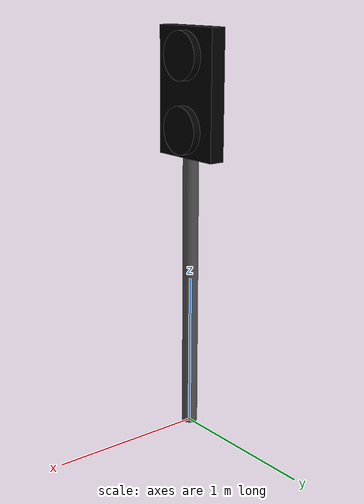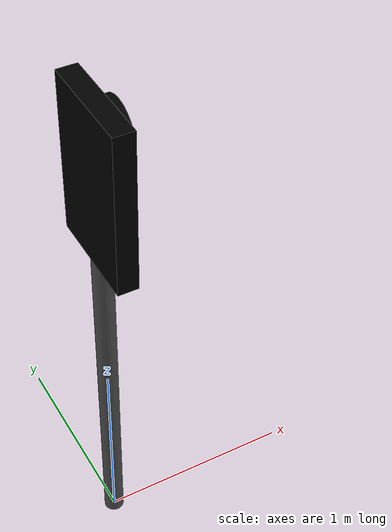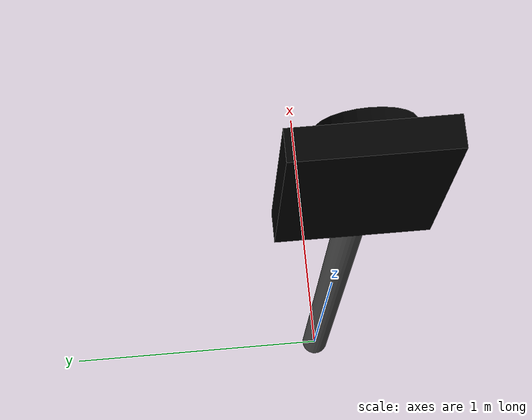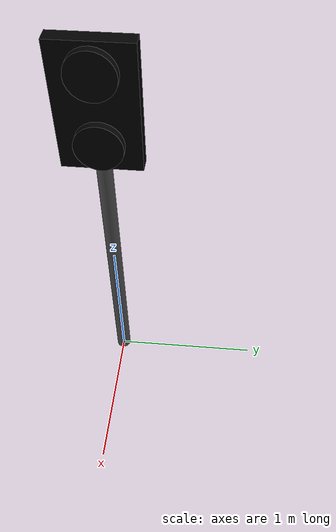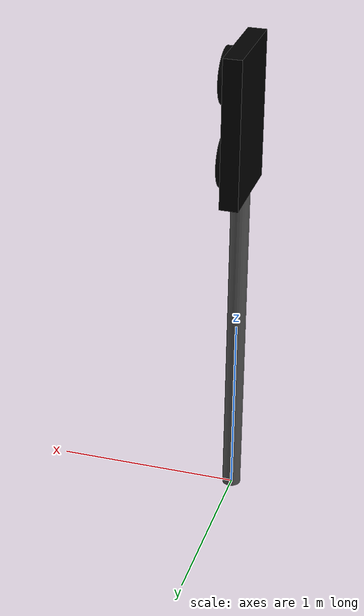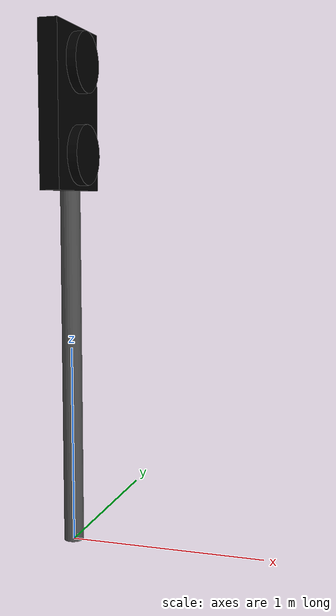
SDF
<?xml version="1.0"?>
<sdf version="1.7">
  <model name="gazebo_traffic_light">
    <static>false</static>

    <link name="pole">
      <gravity>false</gravity>
      <pose>0 0 0.9 0 0 0</pose>
      <visual name="visual">
        <geometry>
          <cylinder>
            <radius>0.05</radius>
            <length>1.8</length>
          </cylinder>
        </geometry>
        <material>
          <ambient>0.3 0.3 0.3 1</ambient>
          <diffuse>0.3 0.3 0.3 1</diffuse>
          <specular>0.1 0.1 0.1 1</specular>
        </material>
      </visual>
      <collision name="collision">
        <geometry>
          <cylinder>
            <radius>0.05</radius>
            <length>1.8</length>
          </cylinder>
        </geometry>
      </collision>
    </link>

    <link name="light_fixture">
      <gravity>false</gravity>
      <pose>0 0 1.8 0 0 0</pose>
      <visual name="visual">
        <pose>0 0 0.4 0 0 0</pose>
        <geometry>
          <box>
            <size>0.1 0.5 0.8</size>
          </box>
        </geometry>
        <material>
          <ambient>0 0 0 1</ambient>
          <diffuse>0 0 0 1</diffuse>
          <specular>0 0 0 1</specular>
        </material>
      </visual>
      <collision name="collision">
        <pose>0 0 0.4 0 0 0</pose>
        <geometry>
          <box>
            <size>0.1 0.5 0.8</size>
          </box>
        </geometry>
      </collision>
    </link>

    <link name="green_off">
      <gravity>false</gravity>
      <pose>0.075 0 1.975 0 1.5707 0</pose>
      <collision name="collision">
        <geometry>
          <cylinder>
            <radius>0.15</radius>
            <length>0.05</length>
          </cylinder>
        </geometry>
      </collision>

      <visual name="visual">
        <geometry>
          <cylinder>
            <radius>0.15</radius>
            <length>0.05</length>
          </cylinder>
        </geometry>
        <material>
          <ambient>0 1 0 1</ambient>
          <diffuse>0 0 0 1</diffuse>
          <specular>0 0 0 1</specular>
          <emissive>0 0 0 1</emissive>
        </material>
      </visual>
    </link>

    <link name="green_on">
      <gravity>false</gravity>
      <pose>0 0 1.975 0 1.5707 0</pose>
      <collision name="collision">
        <geometry>
          <cylinder>
            <radius>0.15</radius>
            <length>0.002</length>
          </cylinder>
        </geometry>
      </collision>

      <visual name="visual">
        <geometry>
          <cylinder>
            <radius>0.15</radius>
            <length>0.002</length>
          </cylinder>
        </geometry>
        <material>
          <ambient>0 0 0 1</ambient>
          <diffuse>0 0 0 1</diffuse>
          <specular>0 0 0 1</specular>
          <emissive>0 1 0 1</emissive>
        </material>
      </visual>
    </link>

    <link name="red_off">
      <gravity>false</gravity>
      <pose>0.075 0 2.425 0 1.5707 0</pose>
      <collision name="collision">
        <geometry>
          <cylinder>
            <radius>0.15</radius>
            <length>0.05</length>
          </cylinder>
        </geometry>
      </collision>

      <visual name="visual">
        <geometry>
          <cylinder>
            <radius>0.15</radius>
            <length>0.05</length>
          </cylinder>
        </geometry>
        <material>
          <ambient>1 0 0 1</ambient>
          <diffuse>0 0 0 1</diffuse>
          <specular>0 0 0 1</specular>
          <emissive>0 0 0 1</emissive>
        </material>
      </visual>
    </link>

    <link name="red_on">
      <gravity>false</gravity>
      <pose>0 0 2.425 0 1.5707 0</pose>
      <collision name="collision">
        <geometry>
          <cylinder>
            <radius>0.15</radius>
            <length>0.002</length>
          </cylinder>
        </geometry>
      </collision>

      <visual name="visual">
        <geometry>
          <cylinder>
            <radius>0.15</radius>
            <length>0.002</length>
          </cylinder>
        </geometry>
        <material>
          <ambient>0 0 0 1</ambient>
          <diffuse>0 0 0 1</diffuse>
          <specular>0 0 0 1</specular>
          <emissive>1 0 0 1</emissive>
        </material>
      </visual>
    </link>

    <joint name="green_switch" type="prismatic" >
      <parent>green_off</parent>
      <child>green_on</child>
      <axis>
        <xyz>0 0 1</xyz>
        <limit>
          <lower>0</lower>
          <upper>0.101</upper>
        </limit>
      </axis>
    </joint>

    <joint name="pole_to_fixture" type="fixed" >
      <parent>pole</parent>
      <child>light_fixture</child>
    </joint>

    <joint name="green_base" type="fixed" >
      <parent>light_fixture</parent>
      <child>green_off</child>
    </joint>

    <joint name="red_switch" type="prismatic" >
      <parent>red_off</parent>
      <child>red_on</child>
      <axis>
        <xyz>0 0 1</xyz>
        <limit>
          <lower>0</lower>
          <upper>0.101</upper>
        </limit>
      </axis>
    </joint>

    <joint name="red_base" type="fixed" >
      <parent>light_fixture</parent>
      <child>red_off</child>
    </joint>
  </model>
</sdf>
